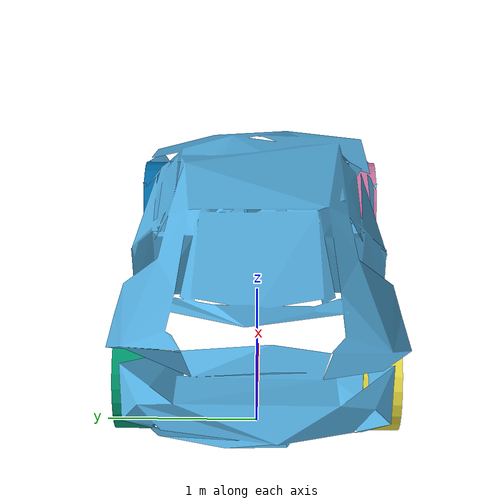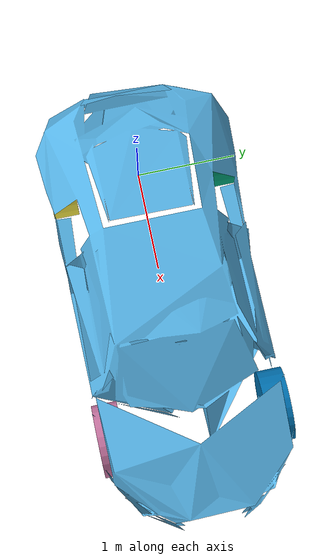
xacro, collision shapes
<?xml version="1.0"?>
<robot name="audibot" xmlns:xacro="http://www.ros.org/wiki/xacro">

  <xacro:property name="half_front_track_width" value="0.819" />
  <xacro:property name="half_rear_track_width" value="0.8" />
  <xacro:property name="half_wheelbase" value="1.326" />

  <xacro:property name="wheel_radius" value="0.36" />
  <xacro:property name="wheel_thickness" value="0.25" />
  <xacro:property name="wheel_mass" value="40.0" />

  <xacro:property name="body_mass" value="1620.0" />
  <xacro:property name="body_width" value="${2*half_rear_track_width}" />
  <xacro:property name="body_depth" value="${2*half_wheelbase + 0.8}" />
  <xacro:property name="body_length" value="0.6" />

  <xacro:arg name="pub_tf" default="true" />
  <xacro:arg name="robot_name" default="" />
  <xacro:arg name="blue" default="false" />

  <gazebo>
    <!-- Simulated vehicle interface -->
    <plugin name="audibot_interface_plugin" filename="libaudibot_interface_plugin.so" >
      <robot_name>$(arg robot_name)</robot_name>
      <pub_tf>$(arg pub_tf)</pub_tf>
      <tf_freq>100.0</tf_freq>
      <ros>
        <namespace>$(arg robot_name)</namespace>
      </ros>
    </plugin>

    <!-- Publish current joint angles -->
    <plugin name="joint_state_publisher" filename="libgazebo_ros_joint_state_publisher.so">
        <joint_name>steer_fl_joint</joint_name>
        <joint_name>steer_fr_joint</joint_name>
        <joint_name>wheel_fl_joint</joint_name>
        <joint_name>wheel_fr_joint</joint_name>
        <joint_name>wheel_rl_joint</joint_name>
        <joint_name>wheel_rr_joint</joint_name>
        <update_rate>100</update_rate>
        <ros>
          <namespace>$(arg robot_name)</namespace>
        </ros>
    </plugin>
  </gazebo>

  <xacro:macro name="rear_wheel" params="name x y z flip" >
    <link name="wheel_${name}" >
      <visual>
        <origin xyz="0 0 0" rpy="1.57079632679 ${flip * 3.1415926535} 0" />
        <geometry>
          <mesh filename="file://$(find audibot_description)/meshes/wheel.dae" scale="1 1 1" />
        </geometry>
      </visual>

      <collision>
        <geometry>
          <cylinder radius="${wheel_radius}" length="${wheel_thickness}" />
        </geometry>
      </collision>

      <inertial>
        <origin xyz="0 0 0" rpy="0 0 0"/>
        <mass value="${wheel_mass}"/>
        <inertia ixx="${wheel_mass/12*(3*wheel_radius*wheel_radius + wheel_thickness*wheel_thickness)}" ixy="0" ixz="0" iyy="${wheel_mass/12*(3*wheel_radius*wheel_radius + wheel_thickness*wheel_thickness)}" iyz="0" izz="${wheel_mass/2 * wheel_radius*wheel_radius}"/>
      </inertial>

    </link>
    <joint name="wheel_${name}_joint" type="continuous" >
      <parent link="base_link" />
      <child link="wheel_${name}" />
      <origin xyz="${x} ${y} ${z}" rpy="-1.57079632679 0 0" />
      <axis xyz="0 0 1" />
      <limit effort="-1.0" velocity="-1.0" />
    </joint>
  </xacro:macro>

  <xacro:macro name="front_wheel" params="name x y z flip" >
    <link name="wheel_${name}" >
      <visual>
        <origin xyz="0 0 0" rpy="1.57079632679 ${flip * pi} 0" />
        <geometry>
          <mesh filename="file://$(find audibot_description)/meshes/wheel.dae" scale="1 1 1" />
        </geometry>
      </visual>

      <collision>
        <geometry>
          <cylinder radius="${wheel_radius}" length="${wheel_thickness}" />
        </geometry>
      </collision>

      <inertial>
        <origin xyz="0 0 0" rpy="0 0 0"/>
        <mass value="${wheel_mass}"/>
        <inertia ixx="${wheel_mass/12*(3*wheel_radius*wheel_radius + wheel_thickness*wheel_thickness)}" ixy="0" ixz="0" iyy="${wheel_mass/12*(3*wheel_radius*wheel_radius + wheel_thickness*wheel_thickness)}" iyz="0" izz="${wheel_mass/2 * wheel_radius*wheel_radius}"/>
      </inertial>
    </link>

    <link name="steer_${name}" >
      <inertial>
        <origin xyz="-0.013054 -0.0295 0" rpy="0 0 0"/>
        <mass value="20.0"/>
        <inertia ixx="2" ixy="0" ixz="0" iyy="2" iyz="0" izz="2"/>
      </inertial>
    </link>

    <joint name="steer_${name}_joint" type="revolute" >
      <parent link="base_link" />
      <child link="steer_${name}" />
      <origin xyz="${x} ${y} ${z}" rpy="0 0 0" />
      <axis xyz="0 0 1" />
      <limit upper="0.6" lower="-0.6" effort="-1.0" velocity="-1.0" />
    </joint>

    <joint name="wheel_${name}_joint" type="continuous" >
      <parent link="steer_${name}" />
      <child link="wheel_${name}" />
      <origin xyz="0 0 0" rpy="-1.57079632679 0 0" />
      <axis xyz="0 0 1" />
      <limit effort="-1.0" velocity="-1.0" />
    </joint>
  </xacro:macro>

  <link name="base_footprint">
  </link>

  <link name="base_link">
    <visual>
      <origin xyz="0.035 0 0.025" rpy="0 0 0" />
      <geometry>
        <xacro:if value="$(arg blue)" >
          <mesh filename="file://$(find audibot_description)/meshes/blue_body.dae" scale="1 1 1" />
        </xacro:if>
        <xacro:unless value="$(arg blue)" >
          <mesh filename="file://$(find audibot_description)/meshes/orange_body.dae" scale="1 1 1" />
        </xacro:unless>
      </geometry>
    </visual>
    <collision>
      <origin xyz="0.035 0 0.025" rpy="0 0 0" />
      <geometry>
        <mesh filename="file://$(find audibot_description)/meshes/body_collision.stl" scale="1 1 1" />
      </geometry>
    </collision>
    <inertial>
      <origin xyz="0 0 0" rpy="0 0 0"/>
      <mass value="${body_mass}"/>
      <inertia ixx="${body_mass/12 * (body_width*body_width + body_length*body_length)}" ixy="0" ixz="0" iyy="${body_mass/12 * (body_length*body_length + body_depth*body_depth)}" iyz="0" izz="${body_mass/12 * (body_width*body_width + body_depth*body_depth)}"/>
    </inertial>
  </link>

  <joint name="base_link_joint" type="fixed">
    <origin xyz="${half_wheelbase} 0 ${wheel_radius}" rpy="0 0 0"/>
    <parent link="base_footprint"/>
    <child link="base_link"/>
  </joint>

  <xacro:rear_wheel name="rl" x="${-half_wheelbase}" y="${half_rear_track_width}" z="0" flip="1" />
  <xacro:rear_wheel name="rr" x="${-half_wheelbase}" y="${-half_rear_track_width}" z="0" flip="0" />
  <xacro:front_wheel name="fl" x="${half_wheelbase}" y="${half_front_track_width}" z="0" flip="1" />
  <xacro:front_wheel name="fr" x="${half_wheelbase}" y="${-half_front_track_width}" z="0" flip="0" />

  <xacro:property name="wheel_friction" value="1.75" />

  <gazebo reference="base_link" >
    <mu1>0.5</mu1>
    <mu2>0.5</mu2>
  </gazebo>

  <gazebo reference="wheel_fl" >
    <mu1>${wheel_friction}</mu1>
    <mu2>${wheel_friction}</mu2>
  </gazebo>

  <gazebo reference="wheel_fr" >
    <mu1>${wheel_friction}</mu1>
    <mu2>${wheel_friction}</mu2>
  </gazebo>

  <gazebo reference="wheel_rl" >
    <mu1>${wheel_friction}</mu1>
    <mu2>${wheel_friction}</mu2>
  </gazebo>

  <gazebo reference="wheel_rr" >
    <mu1>${wheel_friction}</mu1>
    <mu2>${wheel_friction}</mu2>
  </gazebo>
</robot>
